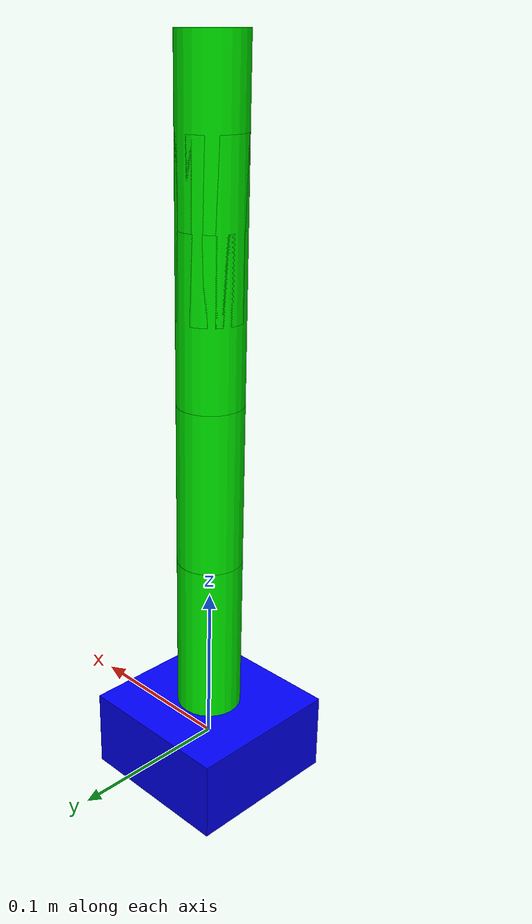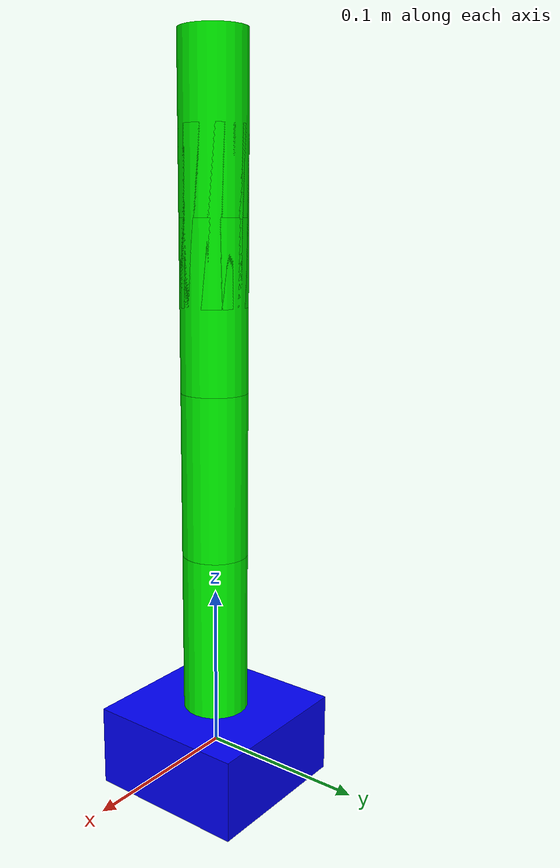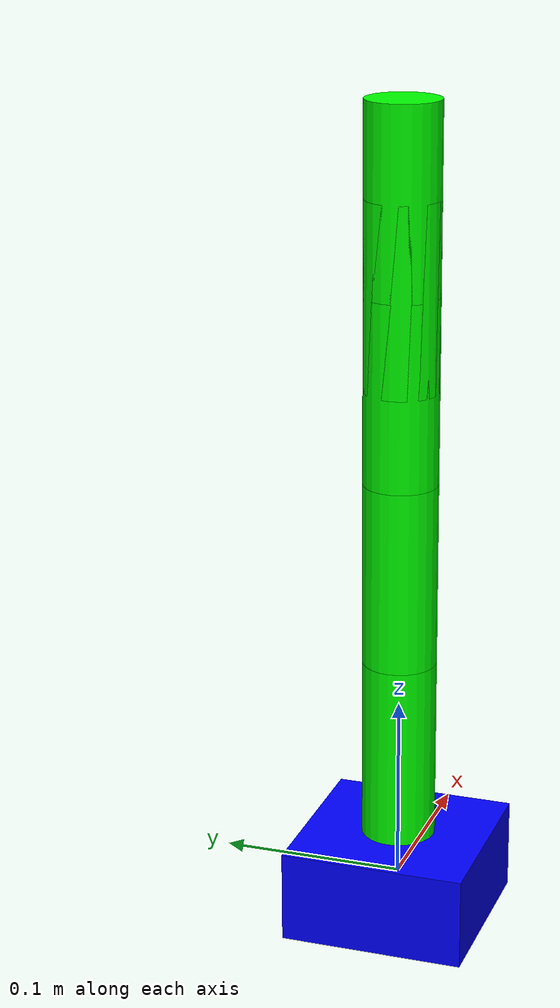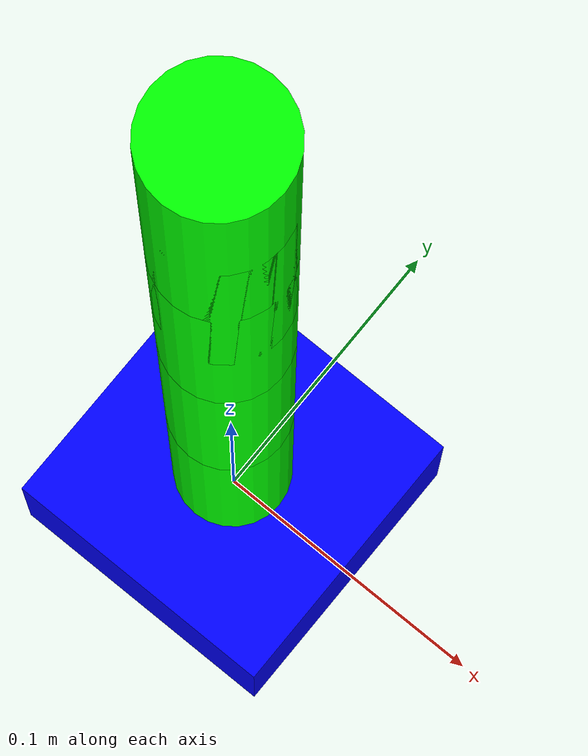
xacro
<?xml version="1.0"?>
<robot name="my_arm" xmlns:xacro="http://www.ros.org/wiki/xacro">

  <!-- Define a base link -->
  <link name="base_link">
    <visual>
      <geometry>
        <box size="0.1 0.1 0.05"/>
      </geometry>
      <material name="blue">
        <color rgba="0 0 1 1"/>
      </material>
    </visual>
    <collision>
      <geometry>
        <box size="0.1 0.1 0.05"/>
      </geometry>
    </collision>
    <inertial>
      <mass value="0.5"/>
      <origin xyz="0 0 0" rpy="0 0 0"/> <!-- Add origin for clarity, though default is 0 0 0 -->
      <inertia ixx="0.001" ixy="0.0" ixz="0.0" iyy="0.001" iyz="0.0" izz="0.001"/>
    </inertial>
  </link>

  <!-- Define a generic joint macro for easy creation -->
  <xacro:macro name="arm_joint" params="prefix parent_link child_link origin_xyz origin_rpy joint_type">
    <joint name="${prefix}_joint" type="${joint_type}">
      <parent link="${parent_link}"/>
      <child link="${child_link}"/>
      <origin xyz="${origin_xyz}" rpy="${origin_rpy}"/>
      <axis xyz="0 0 1"/> <!-- For revolute joints, specify axis of rotation -->
      <limit lower="-${pi/2}" upper="${pi/2}" effort="100" velocity="10"/> <!-- Adjust limits as needed -->
    </joint>

    <link name="${child_link}">
      <visual>
        <geometry>
          <cylinder radius="0.02" length="0.1"/>
        </geometry>
        <material name="green">
          <color rgba="0 1 0 1"/>
        </material>
      </visual>
      <collision>
        <geometry>
          <cylinder radius="0.02" length="0.1"/>
        </geometry>
      </collision>
      <inertial>
        <mass value="0.1"/>
        <origin xyz="0 0 0" rpy="0 0 0"/> <!-- Add origin for clarity -->
        <inertia ixx="0.0001" ixy="0.0" ixz="0.0" iyy="0.0001" iyz="0.0" izz="0.0001"/> <!-- Added ixy, ixz, iyz -->
      </inertial>
    </link>
  </xacro:macro>

  <!-- Define your arm's joints and links here -->
  <!-- These joint names MUST match the 'joint_names' array in your Arduino sketch -->
  <xacro:arm_joint prefix="joint_base" parent_link="base_link" child_link="link_shoulder" origin_xyz="0 0 0.075" origin_rpy="0 0 0" joint_type="revolute"/>
  <xacro:arm_joint prefix="joint_shoulder" parent_link="link_shoulder" child_link="link_elbow" origin_xyz="0 0 0.1" origin_rpy="0 0 0" joint_type="revolute"/>
  <xacro:arm_joint prefix="joint_elbow" parent_link="link_elbow" child_link="link_wrist1" origin_xyz="0 0 0.1" origin_rpy="0 0 0" joint_type="revolute"/>
  <xacro:arm_joint prefix="joint_wrist1" parent_link="link_wrist1" child_link="link_wrist2" origin_xyz="0 0 0.05" origin_rpy="0 0 0" joint_type="revolute"/>
  <xacro:arm_joint prefix="joint_wrist2" parent_link="link_wrist2" child_link="link_gripper" origin_xyz="0 0 0.05" origin_rpy="0 0 0" joint_type="revolute"/>

  <!-- ROS 2 Control Hardware Interface -->
  <ros2_control name="ArduinoArmHardware" type="system">
    <hardware>
      <!-- This 'type' attribute should match the class name of your hardware interface plugin -->
      <plugin>arduino_arm_hardware/ArduinoArmHardware</plugin>
      <!-- Parameters for your hardware interface -->
      <param name="serial_port">/dev/ttyACM0</param> <!-- Adjust to your Arduino's port -->
      <param name="baud_rate">115200</param>
      <param name="num_joints">5</param>
      <!-- Add parameters for steps per unit (e.g., steps per radian) for each joint -->
      <param name="steps_per_unit_0">200.0</param> <!-- Example: 200 steps per radian for joint 0 -->
      <param name="steps_per_unit_1">200.0</param>
      <param name="steps_per_unit_2">200.0</param>
      <param name="steps_per_unit_3">200.0</param>
      <param name="steps_per_unit_4">200.0</param>
    </hardware>

    <!-- Define each joint and its interfaces -->
    <joint name="joint_base">
      <command_interface name="position"/>
      <state_interface name="position"/>
    </joint>
    <joint name="joint_shoulder">
      <command_interface name="position"/>
      <state_interface name="position"/>
    </joint>
    <joint name="joint_elbow">
      <command_interface name="position"/>
      <state_interface name="position"/>
    </joint>
    <joint name="joint_wrist1">
      <command_interface name="position"/>
      <state_interface name="position"/>
    </joint>
    <joint name="joint_wrist2">
      <command_interface name="position"/>
      <state_interface name="position"/>
    </joint>
    <!-- Add more joints if you have them -->
  </ros2_control>

</robot>
